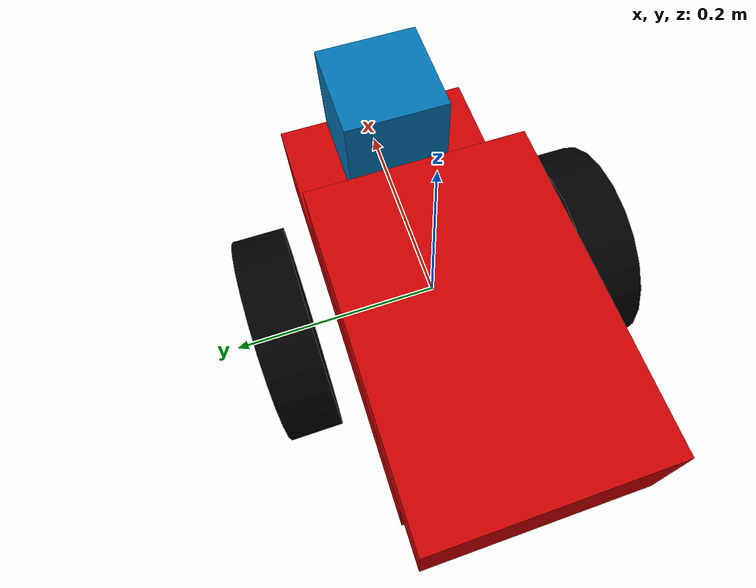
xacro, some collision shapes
<?xml version='1.0'?>

<robot name="udacity_bot" xmlns:xacro="http://www.ros.org/wiki/xacro">
  <xacro:include filename="$(find udacity_bot)/urdf/udacity_bot.gazebo" />

  <material name="Blue">
    <color rgba="0.0 0.0 0.8 1.0"/>
  </material>
  <material name="Red">
    <color rgba="0.8 0.0 0.0 1.0"/>
  </material>
  <material name="Green">
    <color rgba="0.0 0.8 0.0 1.0"/>
  </material>
  <material name="Black">
    <color rgba="0.0 0 0.0 1.0"/>
  </material>

  <joint name="kuai_joint" type="fixed">
    <origin xyz="0 0 0" rpy="0 0 0" />
    <parent link="chassis"/>
    <child link="kuai" />
  </joint>

  <link name="kuai">
     <inertial>
       <mass value="2.0"/>
       <origin xyz="-0.1 0 0.1" rpy="0 0 0"/>
       <inertia
               ixx="0.1" ixy="0" ixz="0"
               iyy="0.1" iyz="0"
               izz="0.1"
       />
     </inertial>

     <collision name='kuai_collision'>
       <origin xyz="-0.1 0 0.1" rpy="0 0 0"/>
       <geometry>
         <box size=".3 .2 .1"/>
       </geometry>
     </collision>

     <visual name='kuai_visual'>
       <origin xyz="-0.1 0 0.1" rpy="0 0 0"/>
       <geometry>
         <box size=".3 .2 .1"/>
       </geometry>
       <material name="Red"/>
     </visual>
   </link>

  <joint type="continuous" name="left_wheel_hinge">
    <origin xyz="0. 0.15 0" rpy="0 0 0"/>
    <child link="left_wheel"/>
    <parent link="chassis"/>
    <axis xyz="0 1 0" rpy="0 0 0"/>
    <limit effort="10000" velocity="1000"/>
    <joint_properties damping="1.0" friction="1.0"/>
  </joint>

  <joint type="continuous" name="right_wheel_hinge">
    <origin xyz="0.0 -0.15 0" rpy="0 0 0"/>
    <child link="right_wheel"/>
    <parent link="chassis"/>
    <axis xyz="0 1 0" rpy="0 0 0"/>
    <limit effort="10000" velocity="1000"/>
    <joint_properties damping="1.0" friction="1.0"/>
  </joint>

  <link name="right_wheel">

    <inertial>
      <origin xyz="0 0 0" rpy=" 0 1.5707 1.5707"/>
      <mass value="5.0"/>
      <inertia
          ixx="0.1" ixy="0" ixz="0"
          iyy="0.1" iyz="0"
          izz="0.1"
      />

    </inertial>

    <collision name='right_wheel_collision'>
      <origin xyz="0 0 0" rpy=" 0 1.5707 1.5707"/>
      <geometry>
        <cylinder radius="0.1" length="0.05"/>
      </geometry>
    </collision>

    <visual name='right_wheel_visual'>
      <origin xyz="0 0 0" rpy=" 0 1.5707 1.5707"/>
      <geometry>
        <cylinder radius="0.1" length="0.05"/>
      </geometry>
      <material name="Black"/>
    </visual>
  </link>

<link name="left_wheel">

    <inertial>
      <origin xyz="0 0 0" rpy=" 0 1.5707 1.5707"/>
      <mass value="5.0"/>
      <inertia
          ixx="0.1" ixy="0" ixz="0"
          iyy="0.1" iyz="0"
          izz="0.1"
      />

    </inertial>

    <collision name='left_wheel_collision'>
      <origin xyz="0 0 0" rpy=" 0 1.5707 1.5707"/>
      <geometry>
        <cylinder radius="0.1" length="0.05"/>
      </geometry>
    </collision>

    <visual name='left_wheel_visual'>
      <origin xyz="0 0 0" rpy=" 0 1.5707 1.5707"/>
      <geometry>
        <cylinder radius="0.1" length="0.05"/>
      </geometry>
      <material name="Black"/>
    </visual>
  </link>

  <joint name="camera_joint" type="fixed">
    <origin xyz="0.2 0 0" rpy="0 0 0" />
    <parent link="chassis"/>
    <child link="camera" />
  </joint>

  <link name="camera">

    <inertial>
      <origin xyz="0 0 0" rpy=" 0 0 0"/>
      <mass value="0.1"/>
      <inertia
          ixx="1e-6" ixy="0" ixz="0"
          iyy="1e-6" iyz="0"
          izz="1e-6"
      />

    </inertial>

    <collision name='camera_collision'>
      <origin xyz="0 0 0" rpy=" 0 0 0"/>
      <geometry>
         <box size=".05 .05 .05"/>
      </geometry>
    </collision>

    <visual name='camera_visual'>
      <origin xyz="0 0 0" rpy=" 0 0 0"/>
      <geometry>
        <box size=".05 .05 .05"/>
      </geometry>
    </visual>
  </link>

  <joint name="hokuyo_joint" type="fixed">
    <origin xyz="0.15 0 0.1" rpy="0 0 0" />
    <parent link="chassis"/>
    <child link="hokuyo" />
  </joint>

  <link name="hokuyo">

    <inertial>
      <origin xyz="0 0 0" rpy=" 0 0 0"/>
      <mass value="0.1"/>
      <inertia
          ixx="1e-6" ixy="0" ixz="0"
          iyy="1e-6" iyz="0"
          izz="1e-6"
      />

    </inertial>

    <collision name='hokuyo_collision'>
      <origin xyz="0 0 0" rpy=" 0 0 0"/>
      <geometry>
         <box size=".1 .1 .1"/>
      </geometry>
    </collision>

    <visual name='hokuyo_visual'>

      <origin xyz="0 0 0" rpy=" 0 0 0"/>
      <geometry>
        <mesh filename="package://udacity_bot/meshes/hokuyo.dae"/>
      </geometry>
    </visual>
  </link>

  <link name="robot_footprint"></link>

  <joint name="robot_footprint_joint" type="fixed">
    <origin xyz="0 0 0" rpy="0 0 0" />
    <parent link="robot_footprint"/>
    <child link="chassis" />
  </joint>

  <link name='chassis'>
    <pose>0 0 0.1 0 0 0</pose>

    <inertial>
      <mass value="15.0"/>
      <origin xyz="0.0 0 0" rpy=" 0 0 0"/>
      <inertia
          ixx="0.1" ixy="0" ixz="0"
          iyy="0.1" iyz="0"
          izz="0.1"
      />
    </inertial>

    <collision name='collision'>
      <origin xyz="0 0 0" rpy=" 0 0 0"/>
      <geometry>
        <box size=".4 .2 .1"/>
      </geometry>
    </collision>

    <visual name='chassis_visual'>
      <origin xyz="0 0 0" rpy=" 0 0 0"/>
      <geometry>
        <box size=".4 .2 .1"/>
      </geometry>
      <material name="Red"/>
    </visual>

    <collision name='back_caster_collision'>
      <origin xyz="-0.15 0 -0.05" rpy=" 0 0 0"/>
      <geometry>
        <sphere radius="0.05"/>
      </geometry>
      <surface>
        <friction>
          <ode>
            <mu>0</mu>
            <mu2>0</mu2>
            <slip1>1.0</slip1>
            <slip2>1.0</slip2>
          </ode>
        </friction>
      </surface>
    </collision>

    <visual name='back_caster_visual'>
      <origin xyz="-0.15 0 -0.05" rpy=" 0 0 0"/>
      <geometry>
        <sphere radius="0.05"/>
      </geometry>
      <material name="Green"/>
    </visual>

    <collision name='front_caster_collision'>
      <origin xyz="0.15 0 -0.05" rpy=" 0 0 0"/>
      <geometry>
        <sphere radius="0.05"/>
      </geometry>
      <surface>
        <friction>
          <ode>
            <mu>0</mu>
            <mu2>0</mu2>
            <slip1>1.0</slip1>
            <slip2>1.0</slip2>
          </ode>
        </friction>
      </surface>
    </collision>

    <visual name='front_caster_visual'>
      <origin xyz="0.15 0 -0.05" rpy=" 0 0 0"/>
      <geometry>
        <sphere radius="0.05"/>
      </geometry>
      <material name="Green"/>
    </visual>

  </link>

</robot>
